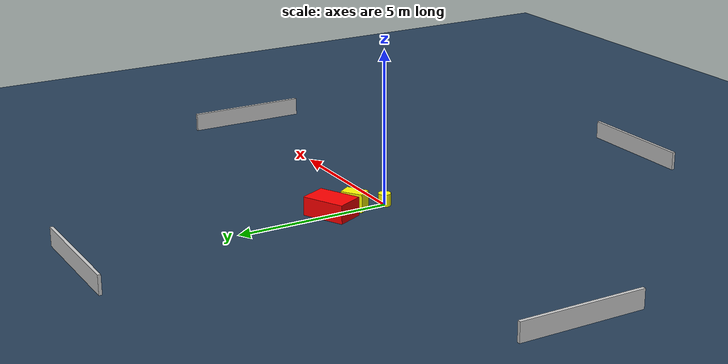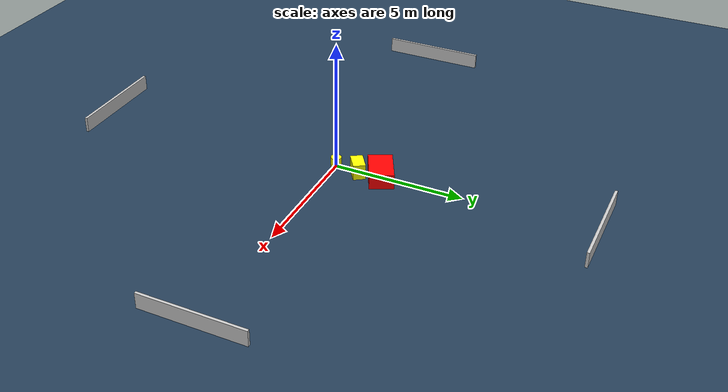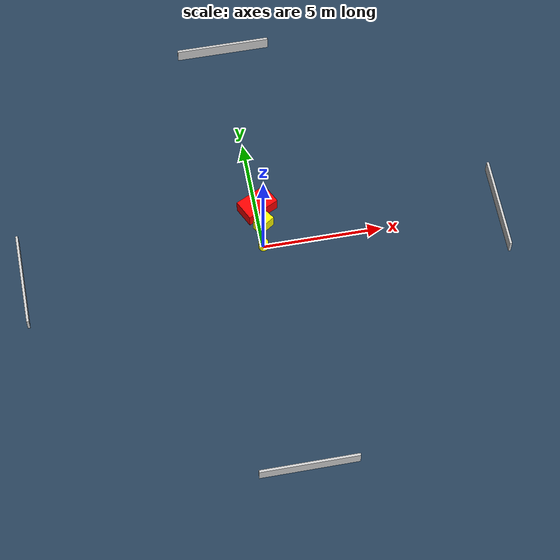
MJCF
<?xml version="1.0" ?>
<mujoco model="generated_environment">
  <option timestep="0.01" integrator="RK4" cone="elliptic"/>
  <default>
    <geom density="1"/>
  </default>
  <asset>
    <texture builtin="gradient" height="3072" name="skybox" rgb1="0.3 0.5 0.7" rgb2="0 0 0" type="skybox" width="512"/>
    <texture builtin="checker" height="300" name="groundplane" rgb1="0.2 0.3 0.4" rgb2="0.1 0.2 0.3" type="2d" width="300"/>
    <material name="groundplane" reflectance="0.2" texrepeat="5 5" texture="groundplane"/>
  </asset>
  <worldbody>
    <light dir="0 0 -1" directional="true" pos="0 0 1.5"/>
    <geom condim="3" friction="0.5 0.005 0.001" material="groundplane" name="floor" pos="0 0 0" size="0 0 0.05" type="plane"/>
    <body name="walls">
      <geom name="wall_1" condim="4" pos="-10.0 0.0 0.3" rgba="0.800000011920929 0.800000011920929 0.800000011920929 1.0" size="0.05 2.0 0.3" type="box"/>
      <geom name="wall_2" condim="4" pos="10.0 0.0 0.3" rgba="0.800000011920929 0.800000011920929 0.800000011920929 1.0" size="0.05 2.0 0.3" type="box"/>
      <geom name="wall_3" condim="4" pos="0.0 -10.0 0.3" rgba="0.800000011920929 0.800000011920929 0.800000011920929 1.0" size="2.0 0.05 0.3" type="box"/>
      <geom name="wall_4" condim="4" pos="0.0 10.0 0.3" rgba="0.800000011920929 0.800000011920929 0.800000011920929 1.0" size="2.0 0.05 0.3" type="box"/>
    </body>
    <body name="robot">
      <joint name="joint_x" type="slide" pos="0 0 0" axis="1 0 0"/>
      <joint name="joint_y" type="slide" pos="0 0 0" axis="0 1 0"/>
      <geom name="robot" type="cylinder" pos="0.0 0.0 0.2" size="0.2 0.2 0.0" mass="5.0" friction="1.0 0.005 0.0001" condim="4" rgba="1.0 1.0 0.0 1.0"/>
    </body>
    <body name="obstacle_1_movable">
      <geom name="obstacle_1_movable" condim="4" pos="0.171920183874575 0.9707805045375275 0.3" euler="0 0 34.0307556855084" friction="0.0 0.005 0.001" rgba="1.0 1.0 0.0 1.0" size="0.3654427455852771 0.2339178166656663 0.3" type="box" mass="0.1"/>
      <joint type="free"/>
    </body>
    <body name="obstacle_2_static">
      <geom name="obstacle_2_static" condim="4" pos="0.06575368043395935 1.8516191576806262 0.3" euler="0 0 26.204125877663458" friction="0.0 0.005 0.001" rgba="1.0 0.0 0.0 1.0" size="0.7139703018150962 0.4585223116457572 0.3" type="box"/>
    </body>
  </worldbody>
  <actuator>
    <motor name="actuator_x" joint="joint_x" gear="1" ctrlrange="-1 1"/>
    <motor name="actuator_y" joint="joint_y" gear="1" ctrlrange="-1 1"/>
  </actuator>
</mujoco>
